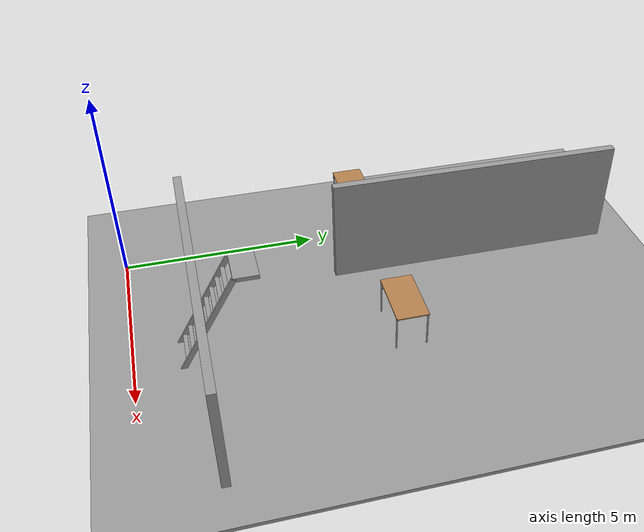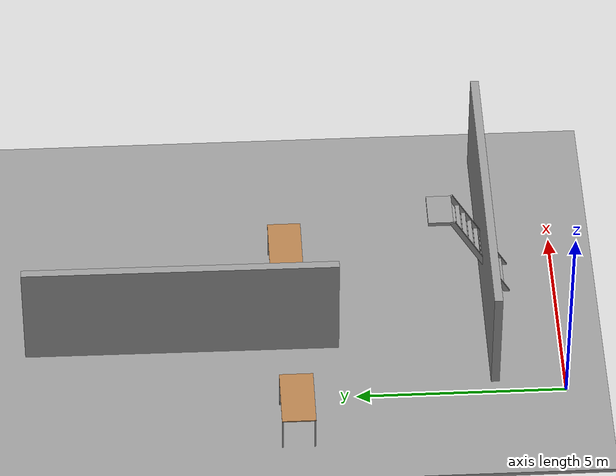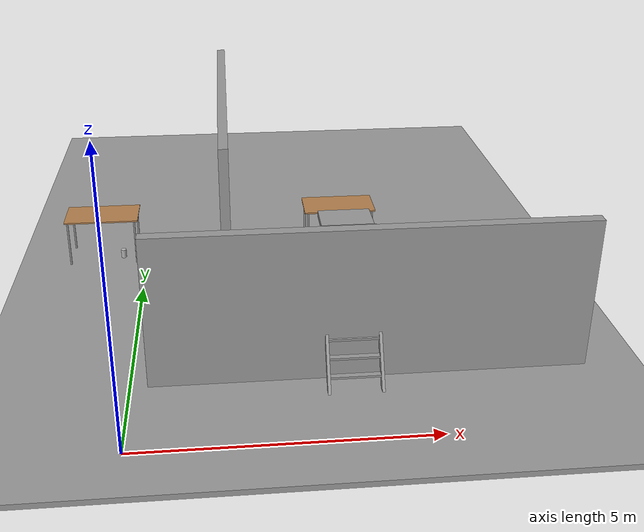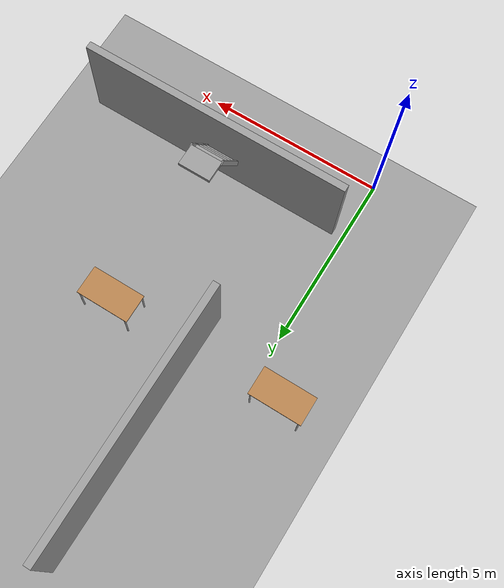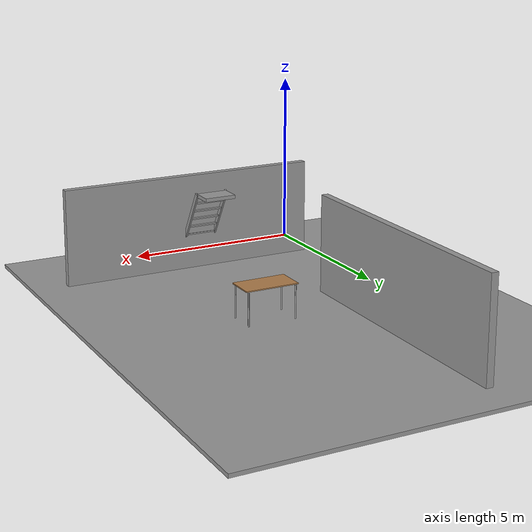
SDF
<sdf version="1.7">
 <world name="default">
  <physics type="ode">
   <max_step_size>0.001</max_step_size>
   <real_time_factor>1</real_time_factor>
   <real_time_update_rate>1000</real_time_update_rate>
  </physics>
  <light name="sun" type="directional">
   <pose>0 0 10 0 -0 0</pose>
   <diffuse>0.8 0.8 0.8 1</diffuse>
   <specular>0.2 0.2 0.2 1</specular>
   <attenuation>
    <range>1000</range>
    <constant>0.9</constant>
    <linear>0.01</linear>
    <quadratic>0.001</quadratic>
   </attenuation>
   <direction>-0.5 0.1 -0.9</direction>
   <spot><inner_angle>0</inner_angle><outer_angle>0</outer_angle><falloff>0</falloff></spot>
  </light>
  <model name="ground_plane">
   <static>1</static>
   <link name="link">
    <collision name="collision">
     <geometry><plane><normal>0 0 1</normal><size>100 100</size></plane></geometry>
     <surface>
      <contact><collide_bitmask>65535</collide_bitmask></contact>
      <friction><ode><mu>100</mu><mu2>50</mu2></ode></friction>
     </surface>
    </collision>
    <visual name="visual">
     <cast_shadows>0</cast_shadows>
     <geometry><plane><normal>0 0 1</normal><size>100 100</size></plane></geometry>
     <material>
      <script><uri>file://media/materials/scripts/gazebo.material</uri><name>Gazebo/Grey</name></script>
     </material>
    </visual>
   </link>
  </model>
  <gravity>0 0 -9.8</gravity>
  <magnetic_field>6e-06 2.3e-05 -4.2e-05</magnetic_field>
  <atmosphere type="adiabatic"/>
  <scene><ambient>0.4 0.4 0.4 1</ambient><background>0.7 0.7 0.7 1</background><shadows>1</shadows></scene>
  <spherical_coordinates>
   <surface_model>EARTH_WGS84</surface_model>
   <latitude_deg>0</latitude_deg>
   <longitude_deg>0</longitude_deg>
   <elevation>0</elevation>
   <heading_deg>0</heading_deg>
  </spherical_coordinates>
  <model name="table">
   <static>1</static>
   <link name="link">
    <collision name="surface">
     <pose>0 0 1 0 -0 0</pose>
     <geometry><box><size>1.5 0.8 0.03</size></box></geometry>
     <surface><friction><ode><mu>0.6</mu><mu2>0.6</mu2></ode></friction></surface>
    </collision>
    <visual name="visual1">
     <pose>0 0 1 0 -0 0</pose>
     <geometry><box><size>1.5 0.8 0.03</size></box></geometry>
     <material>
      <script><uri>file://media/materials/scripts/gazebo.material</uri><name>Gazebo/Wood</name></script>
     </material>
    </visual>
    <collision name="front_left_leg">
     <pose>0.68 0.38 0.5 0 -0 0</pose>
     <geometry><cylinder><radius>0.02</radius><length>1</length></cylinder></geometry>
    </collision>
    <visual name="front_left_leg">
     <pose>0.68 0.38 0.5 0 -0 0</pose>
     <geometry><cylinder><radius>0.02</radius><length>1</length></cylinder></geometry>
     <material>
      <script><uri>file://media/materials/scripts/gazebo.material</uri><name>Gazebo/Grey</name></script>
     </material>
    </visual>
    <collision name="front_right_leg">
     <pose>0.68 -0.38 0.5 0 -0 0</pose>
     <geometry><cylinder><radius>0.02</radius><length>1</length></cylinder></geometry>
    </collision>
    <visual name="front_right_leg">
     <pose>0.68 -0.38 0.5 0 -0 0</pose>
     <geometry><cylinder><radius>0.02</radius><length>1</length></cylinder></geometry>
     <material>
      <script><uri>file://media/materials/scripts/gazebo.material</uri><name>Gazebo/Grey</name></script>
     </material>
    </visual>
    <collision name="back_right_leg">
     <pose>-0.68 -0.38 0.5 0 -0 0</pose>
     <geometry><cylinder><radius>0.02</radius><length>1</length></cylinder></geometry>
    </collision>
    <visual name="back_right_leg">
     <pose>-0.68 -0.38 0.5 0 -0 0</pose>
     <geometry><cylinder><radius>0.02</radius><length>1</length></cylinder></geometry>
     <material>
      <script><uri>file://media/materials/scripts/gazebo.material</uri><name>Gazebo/Grey</name></script>
     </material>
    </visual>
    <collision name="back_left_leg">
     <pose>-0.68 0.38 0.5 0 -0 0</pose>
     <geometry><cylinder><radius>0.02</radius><length>1</length></cylinder></geometry>
    </collision>
    <visual name="back_left_leg">
     <pose>-0.68 0.38 0.5 0 -0 0</pose>
     <geometry><cylinder><radius>0.02</radius><length>1</length></cylinder></geometry>
     <material>
      <script><uri>file://media/materials/scripts/gazebo.material</uri><name>Gazebo/Grey</name></script>
     </material>
    </visual>
   </link>
   <pose>4.11004 6.49708 0 0 -0 0</pose>
  </model>
  <model name="table_clone">
   <static>1</static>
   <link name="link">
    <collision name="surface">
     <pose>0 0 1 0 -0 0</pose>
     <geometry><box><size>1.5 0.8 0.03</size></box></geometry>
     <surface><friction><ode><mu>0.6</mu><mu2>0.6</mu2></ode></friction></surface>
    </collision>
    <visual name="visual1">
     <pose>0 0 1 0 -0 0</pose>
     <geometry><box><size>1.5 0.8 0.03</size></box></geometry>
     <material>
      <script><uri>file://media/materials/scripts/gazebo.material</uri><name>Gazebo/Wood</name></script>
     </material>
    </visual>
    <collision name="front_left_leg">
     <pose>0.68 0.38 0.5 0 -0 0</pose>
     <geometry><cylinder><radius>0.02</radius><length>1</length></cylinder></geometry>
    </collision>
    <visual name="front_left_leg">
     <pose>0.68 0.38 0.5 0 -0 0</pose>
     <geometry><cylinder><radius>0.02</radius><length>1</length></cylinder></geometry>
     <material>
      <script><uri>file://media/materials/scripts/gazebo.material</uri><name>Gazebo/Grey</name></script>
     </material>
    </visual>
    <collision name="front_right_leg">
     <pose>0.68 -0.38 0.5 0 -0 0</pose>
     <geometry><cylinder><radius>0.02</radius><length>1</length></cylinder></geometry>
    </collision>
    <visual name="front_right_leg">
     <pose>0.68 -0.38 0.5 0 -0 0</pose>
     <geometry><cylinder><radius>0.02</radius><length>1</length></cylinder></geometry>
     <material>
      <script><uri>file://media/materials/scripts/gazebo.material</uri><name>Gazebo/Grey</name></script>
     </material>
    </visual>
    <collision name="back_right_leg">
     <pose>-0.68 -0.38 0.5 0 -0 0</pose>
     <geometry><cylinder><radius>0.02</radius><length>1</length></cylinder></geometry>
    </collision>
    <visual name="back_right_leg">
     <pose>-0.68 -0.38 0.5 0 -0 0</pose>
     <geometry><cylinder><radius>0.02</radius><length>1</length></cylinder></geometry>
     <material>
      <script><uri>file://media/materials/scripts/gazebo.material</uri><name>Gazebo/Grey</name></script>
     </material>
    </visual>
    <collision name="back_left_leg">
     <pose>-0.68 0.38 0.5 0 -0 0</pose>
     <geometry><cylinder><radius>0.02</radius><length>1</length></cylinder></geometry>
    </collision>
    <visual name="back_left_leg">
     <pose>-0.68 0.38 0.5 0 -0 0</pose>
     <geometry><cylinder><radius>0.02</radius><length>1</length></cylinder></geometry>
     <material>
      <script><uri>file://media/materials/scripts/gazebo.material</uri><name>Gazebo/Grey</name></script>
     </material>
    </visual>
   </link>
   <pose>-0.881472 6.43796 0 0 -0 0</pose>
  </model>
  <model name="beer">
   <link name="link">
    <pose>0 0 0.115 0 -0 0</pose>
    <inertial>
     <mass>0.39</mass>
     <inertia><ixx>0.00058</ixx><ixy>0</ixy><ixz>0</ixz><iyy>0.00058</iyy><iyz>0</iyz><izz>0.00019</izz></inertia>
    </inertial>
    <collision name="collision">
     <geometry><cylinder><radius>0.055</radius><length>0.23</length></cylinder></geometry>
    </collision>
    <visual name="visual">
     <geometry><cylinder><radius>0.055</radius><length>0.23</length></cylinder></geometry>
     <material>
      <script>
       <uri>model://beer/materials/scripts</uri>
       <uri>model://beer/materials/textures</uri>
       <name>Beer/Diffuse</name>
      </script>
     </material>
    </visual>
   </link>
   <pose>-0.491586 6.30561 -8e-06 6e-06 4e-06 9e-06</pose>
  </model>
  <model name="grey_wall">
   <static>1</static>
   <link name="link">
    <pose>0 0 1.4 0 -0 0</pose>
    <collision name="collision"><geometry><box><size>7.5 0.2 2.8</size></box></geometry></collision>
    <visual name="visual">
     <cast_shadows>0</cast_shadows>
     <geometry><box><size>7.5 0.2 2.8</size></box></geometry>
     <material>
      <script>
       <uri>model://grey_wall/materials/scripts</uri>
       <uri>model://grey_wall/materials/textures</uri>
       <name>vrc/grey_wall</name>
      </script>
     </material>
    </visual>
   </link>
   <pose>4.04693 1.67459 0 0 -0 0</pose>
  </model>
  <model name="grey_wall_clone">
   <static>1</static>
   <link name="link">
    <pose>0 0 1.4 0 -0 0</pose>
    <collision name="collision"><geometry><box><size>7.5 0.2 2.8</size></box></geometry></collision>
    <visual name="visual">
     <cast_shadows>0</cast_shadows>
     <geometry><box><size>7.5 0.2 2.8</size></box></geometry>
     <material>
      <script>
       <uri>model://grey_wall/materials/scripts</uri>
       <uri>model://grey_wall/materials/textures</uri>
       <name>vrc/grey_wall</name>
      </script>
     </material>
    </visual>
   </link>
   <pose>1.70383 9.07918 0 0 0 -1.57574</pose>
  </model>
  <model name="ground_plane_0">
   <static>1</static>
   <link name="link">
    <collision name="collision">
     <geometry><plane><normal>0 0 1</normal><size>100 100</size></plane></geometry>
     <surface><friction><ode><mu>100</mu><mu2>50</mu2></ode></friction></surface>
    </collision>
    <visual name="visual">
     <cast_shadows>0</cast_shadows>
     <geometry><plane><normal>0 0 1</normal><size>100 100</size></plane></geometry>
     <material>
      <script><uri>file://media/materials/scripts/gazebo.material</uri><name>Gazebo/Grey</name></script>
     </material>
    </visual>
   </link>
   <pose>-0.832457 -1.35371 0 0 -0 0</pose>
  </model>
  <model name="ladder_60deg_0rails">
   <static>1</static>
   <link name="step0">
    <pose>0 0.15396 0.266667 0 -0 0</pose>
    <inertial>
     <mass>9.75482</mass>
     <inertia>
      <ixx>0.00957124</ixx>
      <iyy>0.65963</iyy>
      <izz>0.666842</izz>
      <ixy>0</ixy>
      <ixz>0</ixz>
      <iyz>0</iyz>
     </inertia>
    </inertial>
    <collision name="collision"><geometry><box><size>0.9 0.1016 0.0381</size></box></geometry></collision>
    <visual name="visual">
     <geometry><box><size>0.9 0.1016 0.0381</size></box></geometry>
     <material>
      <script><uri>file://media/materials/scripts/gazebo.material</uri><name>Gazebo/Grey</name></script>
     </material>
    </visual>
   </link>
   <link name="step1">
    <pose>0 0.30792 0.533333 0 -0 0</pose>
    <inertial>
     <mass>9.75482</mass>
     <inertia>
      <ixx>0.00957124</ixx>
      <iyy>0.65963</iyy>
      <izz>0.666842</izz>
      <ixy>0</ixy>
      <ixz>0</ixz>
      <iyz>0</iyz>
     </inertia>
    </inertial>
    <collision name="collision"><geometry><box><size>0.9 0.1016 0.0381</size></box></geometry></collision>
    <visual name="visual">
     <geometry><box><size>0.9 0.1016 0.0381</size></box></geometry>
     <material>
      <script><uri>file://media/materials/scripts/gazebo.material</uri><name>Gazebo/Grey</name></script>
     </material>
    </visual>
   </link>
   <link name="step2">
    <pose>0 0.46188 0.8 0 -0 0</pose>
    <inertial>
     <mass>9.75482</mass>
     <inertia>
      <ixx>0.00957124</ixx>
      <iyy>0.65963</iyy>
      <izz>0.666842</izz>
      <ixy>0</ixy>
      <ixz>0</ixz>
      <iyz>0</iyz>
     </inertia>
    </inertial>
    <collision name="collision"><geometry><box><size>0.9 0.1016 0.0381</size></box></geometry></collision>
    <visual name="visual">
     <geometry><box><size>0.9 0.1016 0.0381</size></box></geometry>
     <material>
      <script><uri>file://media/materials/scripts/gazebo.material</uri><name>Gazebo/Grey</name></script>
     </material>
    </visual>
   </link>
   <link name="step3">
    <pose>0 0.61584 1.06667 0 -0 0</pose>
    <inertial>
     <mass>9.75482</mass>
     <inertia>
      <ixx>0.00957124</ixx>
      <iyy>0.65963</iyy>
      <izz>0.666842</izz>
      <ixy>0</ixy>
      <ixz>0</ixz>
      <iyz>0</iyz>
     </inertia>
    </inertial>
    <collision name="collision"><geometry><box><size>0.9 0.1016 0.0381</size></box></geometry></collision>
    <visual name="visual">
     <geometry><box><size>0.9 0.1016 0.0381</size></box></geometry>
     <material>
      <script><uri>file://media/materials/scripts/gazebo.material</uri><name>Gazebo/Grey</name></script>
     </material>
    </visual>
   </link>
   <link name="step4">
    <pose>0 0.7698 1.33333 0 -0 0</pose>
    <inertial>
     <mass>9.75482</mass>
     <inertia>
      <ixx>0.00957124</ixx>
      <iyy>0.65963</iyy>
      <izz>0.666842</izz>
      <ixy>0</ixy>
      <ixz>0</ixz>
      <iyz>0</iyz>
     </inertia>
    </inertial>
    <collision name="collision"><geometry><box><size>0.9 0.1016 0.0381</size></box></geometry></collision>
    <visual name="visual">
     <geometry><box><size>0.9 0.1016 0.0381</size></box></geometry>
     <material>
      <script><uri>file://media/materials/scripts/gazebo.material</uri><name>Gazebo/Grey</name></script>
     </material>
    </visual>
   </link>
   <link name="step5">
    <pose>0 0.92376 1.6 0 -0 0</pose>
    <inertial>
     <mass>9.75482</mass>
     <inertia>
      <ixx>0.00957124</ixx>
      <iyy>0.65963</iyy>
      <izz>0.666842</izz>
      <ixy>0</ixy>
      <ixz>0</ixz>
      <iyz>0</iyz>
     </inertia>
    </inertial>
    <collision name="collision"><geometry><box><size>0.9 0.1016 0.0381</size></box></geometry></collision>
    <visual name="visual">
     <geometry><box><size>0.9 0.1016 0.0381</size></box></geometry>
     <material>
      <script><uri>file://media/materials/scripts/gazebo.material</uri><name>Gazebo/Grey</name></script>
     </material>
    </visual>
   </link>
   <link name="step6">
    <pose>0 1.07772 1.86667 0 -0 0</pose>
    <inertial>
     <mass>9.75482</mass>
     <inertia>
      <ixx>0.00957124</ixx>
      <iyy>0.65963</iyy>
      <izz>0.666842</izz>
      <ixy>0</ixy>
      <ixz>0</ixz>
      <iyz>0</iyz>
     </inertia>
    </inertial>
    <collision name="collision"><geometry><box><size>0.9 0.1016 0.0381</size></box></geometry></collision>
    <visual name="visual">
     <geometry><box><size>0.9 0.1016 0.0381</size></box></geometry>
     <material>
      <script><uri>file://media/materials/scripts/gazebo.material</uri><name>Gazebo/Grey</name></script>
     </material>
    </visual>
   </link>
   <link name="step7">
    <pose>0 1.23168 2.13333 0 -0 0</pose>
    <inertial>
     <mass>9.75482</mass>
     <inertia>
      <ixx>0.00957124</ixx>
      <iyy>0.65963</iyy>
      <izz>0.666842</izz>
      <ixy>0</ixy>
      <ixz>0</ixz>
      <iyz>0</iyz>
     </inertia>
    </inertial>
    <collision name="collision"><geometry><box><size>0.9 0.1016 0.0381</size></box></geometry></collision>
    <visual name="visual">
     <geometry><box><size>0.9 0.1016 0.0381</size></box></geometry>
     <material>
      <script><uri>file://media/materials/scripts/gazebo.material</uri><name>Gazebo/Grey</name></script>
     </material>
    </visual>
   </link>
   <link name="landing">
    <pose>0 1.68564 2.4 0 -0 0</pose>
    <inertial>
     <mass>57.6072</mass>
     <inertia><ixx>1.73518</ixx><iyy>3.89545</iyy><izz>5.6167</izz><ixy>0</ixy><ixz>0</ixz><iyz>0</iyz></inertia>
    </inertial>
    <collision name="collision"><geometry><box><size>0.9 0.6 0.1016</size></box></geometry></collision>
    <visual name="visual">
     <geometry><box><size>0.9 0.6 0.1016</size></box></geometry>
     <material>
      <script><uri>file://media/materials/scripts/gazebo.material</uri><name>Gazebo/Grey</name></script>
     </material>
    </visual>
   </link>
   <link name="left_side_wall">
    <pose>-0.45 0.69282 1.2 1.0472 -0 0</pose>
    <collision name="collision"><geometry><box><size>0.0508 2.85128 0.13</size></box></geometry></collision>
    <visual name="visual">
     <geometry><box><size>0.0508 2.85128 0.13</size></box></geometry>
     <material>
      <script><uri>file://media/materials/scripts/gazebo.material</uri><name>Gazebo/Grey</name></script>
     </material>
    </visual>
   </link>
   <link name="right_side_wall">
    <pose>0.45 0.69282 1.2 1.0472 -0 0</pose>
    <collision name="collision"><geometry><box><size>0.0508 2.85128 0.13</size></box></geometry></collision>
    <visual name="visual">
     <geometry><box><size>0.0508 2.85128 0.13</size></box></geometry>
     <material>
      <script><uri>file://media/materials/scripts/gazebo.material</uri><name>Gazebo/Grey</name></script>
     </material>
    </visual>
   </link>
   <pose>3.73988 1.12677 0 0 -0 0</pose>
  </model>
 </world>
</sdf>
